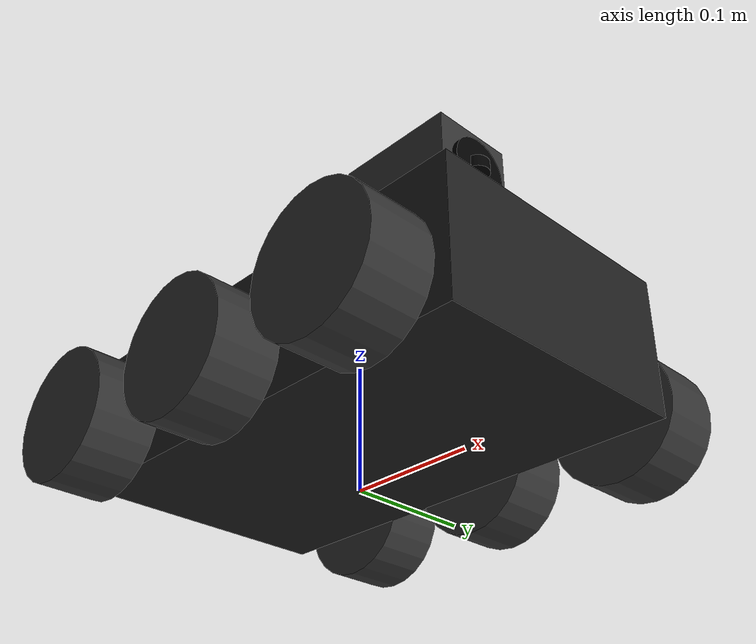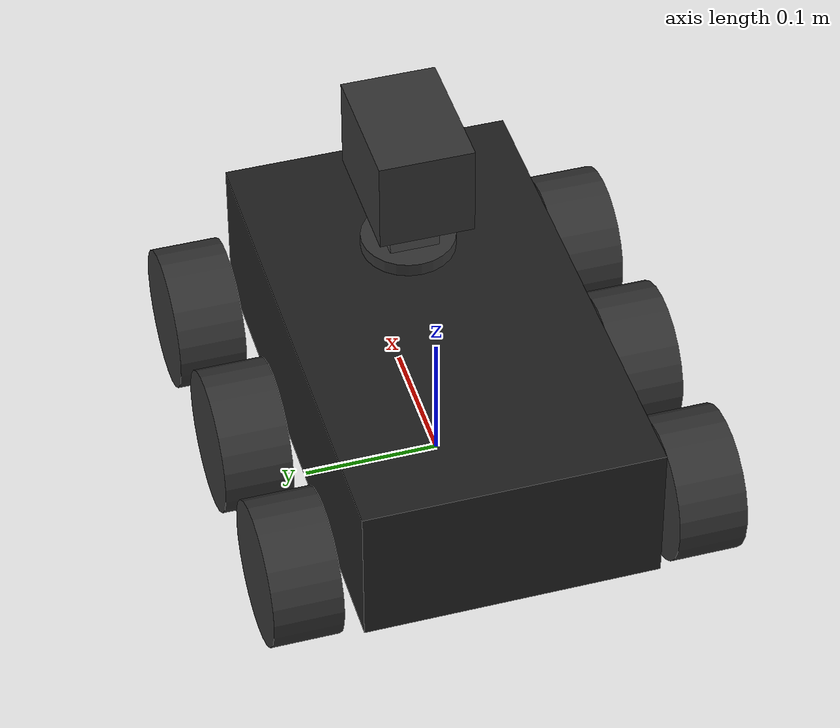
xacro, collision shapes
<?xml version="1.0"?>
<robot name="rgi" xmlns:xacro="http://www.ros.org/wiki/xacro">

  <!-- Included URDF/XACRO Files -->
  <xacro:include filename="$(find rgi_description)/urdf/materials.xacro" />
  <xacro:include filename="$(find rgi_description)/urdf/wheel.xacro" />
  <xacro:include filename="$(find rgi_description)/urdf/ptz.xacro" />

  <!-- PROPERTY LIST -->
  <!--All units in m-kg-s-radians unit system -->
  <property name="M_PI" value="3.1415926535897931" />

  <!-- Main Body-base -->
  <property name="base_x_size" value="0.378" />
  <property name="base_y_size" value="0.216" />
  <property name="base_z_size" value="0.11" />
  <property name="base_mass" value="3.0" /> <!-- in kg-->

  <!--Inertial macros for the box and cylinder. Units are kg*m^2-->
  <macro name="box_inertia" params="m x y z">
    <inertia  ixx="${m*(y*y+z*z)/12}" ixy = "0" ixz = "0"
              iyy="${m*(x*x+z*z)/12}" iyz = "0"
              izz="${m*(x*x+z*z)/12}" />
  </macro>

  <macro name="cylinder_inertia" params="m r h">
    <inertia  ixx="${m*(3*r*r+h*h)/12}" ixy = "0" ixz = "0"
              iyy="${m*(3*r*r+h*h)/12}" iyz = "0"
              izz="${m*r*r/2}" />
  </macro>

  <!-- BASE-FOOTPRINT -->
  <!-- base_footprint is a fictitious link(frame) that is on the ground right below base_link origin -->
  <link name="base_footprint">
    <inertial>
      <mass value="0.0001" />
      <origin xyz="0 0 0" />
      <inertia ixx="0.0001" ixy="0.0" ixz="0.0"
          iyy="0.0001" iyz="0.0"
          izz="0.0001" />
    </inertial>
    <visual>
        <origin xyz="0 0 0" rpy="0 0 0" />
        <geometry>
            <box size="0.001 0.001 0.001" />
        </geometry>
    </visual>
  </link>

  <gazebo reference="base_footprint">
    <turnGravityOff>false</turnGravityOff>
  </gazebo>

  <joint name="base_footprint_joint" type="fixed">
  <origin xyz="0 0 ${wheel_radius - base_z_origin_to_wheel_origin}" rpy="0 0 0" />
    <parent link="base_footprint"/>
    <child link="base_link" />
  </joint>

  <!-- BASE-LINK -->
  <!--Actual body/chassis of the robot-->
  <link name="base_link">
    <inertial>
      <mass value="${base_mass}" />
      <origin xyz="0 0 0" />
      <!--The 3x3 rotational inertia matrix. -->
      <box_inertia  m="${base_mass}" x="${base_x_size}" y="${base_y_size}" z="${base_z_size}"/>
    </inertial>
    <visual>
      <origin xyz="0 0 -0.047" rpy="0 0 0" />
      <geometry>
        <!--box size="${base_x_size} ${base_y_size} ${base_z_size}"/-->
				<mesh filename="package://rgi_description/meshes/base_link.stl"
				scale = "0.407	0.57 0.4579439252" />
      </geometry>
      <material name="Black" />
    </visual>
    <collision>
      <origin xyz="0 0 0" rpy="0 0 0 " />
      <geometry>
         <box size="${base_x_size} ${base_y_size} ${base_z_size}"/>
      </geometry>
    </collision>
  </link>
  <gazebo reference="base_link">
    <material>Gazebo/Black</material>
    <turnGravityOff>false</turnGravityOff>
  </gazebo>
 <!--Just 4 Display-->
  <link name="top_plate">
    <collision>

      <origin xyz="0 0 0" rpy="0 0 0"/>
      <geometry>
				<box size="0.001 0.001 0.001"/>
				<!--the collision boundary for parts are taken into account by collision boundary of the base_link-->
      </geometry>
    </collision>

    <visual>
      <origin xyz="0 0 -0.047" rpy="0 0 0"/>
			<geometry>
				<mesh filename="package://rgi_description/meshes/top_plate.stl"
				scale = "0.407	0.57 0.4579439252" />
      </geometry>
      <material name="black"/>
    </visual>

    <inertial>
      <origin xyz="0 0 0.1" rpy="0 0 0"/>
      <mass value="0.1"/>
      <inertia
				ixx="0.01" ixy="0.0" ixz="0.0"
				iyy="0.01" iyz="0.0"
				izz="0.01"/>
    </inertial>
  </link>
  <joint name="joint_top_plate" type="fixed">
    <parent link="base_link"/>
    <child link="top_plate"/>
    <origin xyz="0 0 0" rpy="0 0 0 " />
  </joint>
  <gazebo reference="top_plate">
    <material>Gazebo/Black</material>
    <turnGravityOff>false</turnGravityOff>
  </gazebo>
<!-- end Just 4 Display top_plate-->
  <!-- PTZb assembly -->
	<ptz parent= "base_link" x_offset="0.073" y_offset="0" z_offset="${base_z_size/2}" />

  <!-- WHEELs -->
  <wheel fb="front" lr="right" parent="base_link" translateX="1" translateY="-1" flipY="-1"/>
  <wheel fb="front" lr="left" parent="base_link" translateX="1" translateY="1" flipY="-1"/>
  <wheel fb="center" lr="right" parent="base_link" translateX="0" translateY="-1" flipY="-1"/>
  <wheel fb="center" lr="left" parent="base_link" translateX="0" translateY="1" flipY="-1"/>
  <wheel fb="back" lr="right" parent="base_link" translateX="-1" translateY="-1" flipY="-1"/>
  <wheel fb="back" lr="left" parent="base_link" translateX="-1" translateY="1" flipY="-1"/>

  <gazebo>
    <plugin name="skid_steer_drive_controller" filename="libgazebo_ros_skid_steer_drive.so">
      <alwaysOn>true</alwaysOn>
      <updateRate>100.0</updateRate>
      <leftFrontJoint>front_left_wheel_joint</leftFrontJoint>
      <rightFrontJoint>front_right_wheel_joint</rightFrontJoint>
      <leftRearJoint>back_left_wheel_joint</leftRearJoint>
      <rightRearJoint>back_right_wheel_joint</rightRearJoint>
      <wheelSeparation>${base_y_size}</wheelSeparation>
      <wheelDiameter>${2*wheel_radius}</wheelDiameter>
      <torque>35</torque>
      <broadcastTF>1</broadcastTF>
      <odometryFrame>map</odometryFrame>
      <commandTopic>cmd_vel</commandTopic>
      <odometryTopic>odom</odometryTopic>
      <robotBaseFrame>base_footprint</robotBaseFrame>
    </plugin>
    <plugin name="gazebo_ros_control" filename="libgazebo_ros_control.so" />
  </gazebo>

</robot>

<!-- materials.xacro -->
<robot>

  <material name="black">
    <color rgba="0.0 0.0 0.0 1.0"/>
  </material>

  <material name="blue">
    <color rgba="0.0 0.0 0.8 1.0"/>
  </material>

  <material name="green">
    <color rgba="0.0 0.8 0.0 1.0"/>
  </material>

  <material name="yellow">
    <color rgba="0.8 0.8 0 1"/>
  </material>

  <material name="grey">
    <color rgba="0.2 0.2 0.2 1.0"/>
  </material>

	<material name="DarkGray">
		<color rgba="0.3 0.3 0.3 1.0"/>
	</material>

  <material name="orange">
    <color rgba="${255/255} ${108/255} ${10/255} 1.0"/>
  </material>

  <material name="brown">
    <color rgba="${222/255} ${207/255} ${195/255} 1.0"/>
  </material>

  <material name="red">
    <color rgba="0.8 0.0 0.0 1.0"/>
  </material>

  <material name="white">
    <color rgba="1.0 1.0 1.0 1.0"/>
  </material>

</robot>

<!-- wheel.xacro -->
<robot name="wheel" xmlns:xacro="http://www.ros.org/wiki/xacro">

  <!-- Wheels -->
  <property name="wheel_radius" value="0.0525" />
  <property name="wheel_height" value="0.05" />
  <property name="wheel_mass" value="0.15" /> <!-- in kg-->

  <property name="base_x_origin_to_wheel_origin" value="0.1365" /> <!--length = BOX_l -wheel_radius -->
  <property name="base_y_origin_to_wheel_origin" value="0.1465" /> <!--Width = BOX_w + wheelGap + wheel_height/2-->
  <property name="base_z_origin_to_wheel_origin" value="-0.03" />

  <macro name="cylinder_inertia" params="m r h">
    <inertia  ixx="${m*(3*r*r+h*h)/12}" ixy = "0" ixz = "0"
              iyy="${m*(3*r*r+h*h)/12}" iyz = "0"
              izz="${m*r*r/2}" />
  </macro>

  <xacro:macro name="wheel" params="fb lr parent translateX translateY flipY"> <!--fb : front, back ; lr: left, right -->
    <link name="${fb}_${lr}_wheel">
      <visual>
        <origin xyz="0 0 0" rpy="${flipY*M_PI} 0 0" />
        <geometry>
          <!--cylinder length="${wheel_height}" radius="${wheel_radius}" /-->
         <mesh filename="package://rgi_description/meshes/wheel.stl"
				scale = " 0.3094233474 0.4374453193 0.3094233474 " />
        </geometry>
        <material name="grey"/>
      </visual>
      <collision>
        <origin xyz="0 0 0" rpy="${flipY*M_PI/2} 0 0" />
        <geometry>
          <cylinder length="${wheel_height}" radius="${wheel_radius}" />
        </geometry>
      </collision>
      <inertial>
        <mass value="${wheel_mass}" />
        <origin xyz="0 0 0" />
        <cylinder_inertia  m="${wheel_mass}" r="${wheel_radius}" h="${wheel_height}" />
      </inertial>
    </link>

    <gazebo reference="${fb}_${lr}_wheel">
      <mu1 value="1.0"/>
      <mu2 value="1.0"/>
      <kp  value="10000000.0" />
      <kd  value="1.0" />
      <fdir1 value="1 0 0"/>
      <material>Gazebo/Grey</material>
      <turnGravityOff>false</turnGravityOff>
    </gazebo>

    <joint name="${fb}_${lr}_wheel_joint" type="continuous">
      <parent link="${parent}"/>
      <child link="${fb}_${lr}_wheel"/>
      <origin xyz="${translateX * base_x_origin_to_wheel_origin} ${translateY * base_y_origin_to_wheel_origin} ${base_z_origin_to_wheel_origin}" rpy="0 0 0" />
      <axis xyz="0 1 0" rpy="0 0 0" />
      <limit effort="100" velocity="100"/>
      <joint_properties damping="0.0" friction="0.0"/>
    </joint>

    <!-- Transmission is important to link the joints and the controller -->
    <transmission name="${fb}_${lr}_wheel_joint_trans">
      <type>transmission_interface/SimpleTransmission</type>
      <joint name="${fb}_${lr}_wheel_joint" />
      <actuator name="${fb}_${lr}_wheel_joint_motor">
        <hardwareInterface>EffortJointInterface</hardwareInterface>
        <mechanicalReduction>1</mechanicalReduction>
      </actuator>
    </transmission>

  </xacro:macro>
</robot>

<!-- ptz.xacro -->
<robot name="ptz" xmlns:xacro="http://www.ros.org/wiki/xacro">

  <!-- "turret" -->
  <property name="turret_radius" value="0.035" />
  <property name="turret_height" value="0.010" />
  <property name="turret_mass" value="0.1" /> <!-- in kg-->
  <property name="turret_origin_x" value="0.073" /> <!--length -->
  <property name="turret_origin_y" value="0.0" /> <!--Width - in the center-->
  <property name="turret_origin_z" value="0.06" /> <!-- on Top -->
  <!-- Camera tilt link -->
  <property name="cam_tilt_x_size" value="0.035" />
  <property name="cam_tilt_y_size" value="0.037" />
  <property name="cam_tilt_z_size" value="0.03" />
	<property name="cam_tilt_mass" value="0.050" /> <!-- in kg-->
  <!-- Camera link -->
  <property name="camera_x_size" value="0.100" />
  <property name="camera_y_size" value="0.070" />
  <property name="camera_z_size" value="0.070" />
	<property name="camera_mass" value="0.450" /> <!-- in kg-->
	  <!-- Camera Lens -->
  <property name="lens_radius" value="0.025" />
  <property name="lens_height" value="0.005" />
	<property name="lens_mass" value="0.010" /> <!-- in kg-->

  <macro name="cylinder_inertia" params="m r h">
    <inertia  ixx="${m*(3*r*r+h*h)/12}" ixy = "0" ixz = "0"
              iyy="${m*(3*r*r+h*h)/12}" iyz = "0"
              izz="${m*r*r/2}" />
  </macro>

  <xacro:macro name="ptz" params="parent x_offset y_offset z_offset">
  <link name="turret_base">
    <collision>

      <origin xyz="0 0 0" rpy="0 0 0"/>
      <geometry>
				<cylinder length="${turret_height}" radius="${turret_radius}" />
      </geometry>
    </collision>

    <visual>
      <origin xyz="0 0 0" rpy="0 0 0"/>
			<geometry>
				<cylinder length="${turret_height}" radius="${turret_radius}" />
      </geometry>
      <material name="grey"/>

    </visual>

    <inertial>
      <origin xyz="0 0 0" rpy="0 0 0"/>
      <mass value="${turret_mass}" />
      <cylinder_inertia  m="${turret_mass}" r="${turret_radius}" h="${turret_height}" />
    </inertial>
  </link>
  <joint name="joint_turret_base" type="continuous">
    <parent link="${parent}"/>
    <child link="turret_base"/>

		<origin xyz="${x_offset} ${y_offset} ${turret_height/2 + z_offset}" rpy="0 0 0 " />
		<axis xyz="0 0 1" rpy="0 0 0" />
  </joint>
  <transmission name="ptz_base_joint_trans">
    <type>transmission_interface/SimpleTransmission</type>
    <joint name="joint_turret_base" />
    <actuator name="$ptz_base_joint_motor">
      <hardwareInterface>EffortJointInterface</hardwareInterface>
      <mechanicalReduction>1</mechanicalReduction>
    </actuator>
  </transmission>
  <gazebo reference="turret_base">
    <material>Gazebo/Grey</material>
    <turnGravityOff>false</turnGravityOff>
  </gazebo>
<!--end Display turret-->
  <link name="cam_tilt_link">
    <collision>

      <origin xyz="0 0 0" rpy="0 0 0"/>
      <geometry>
				<box size="${cam_tilt_x_size} ${cam_tilt_y_size} ${cam_tilt_z_size}" />
      </geometry>
    </collision>

    <visual>
      <origin xyz="0 0 0" rpy="0 0 0"/>
			<geometry>
				<box size="${cam_tilt_x_size} ${cam_tilt_y_size} ${cam_tilt_z_size}" />
      </geometry>
      <material name="DarkGray"/>
    </visual>

    <inertial>
      <origin xyz="0 0 0" rpy="0 0 0"/>
      <mass value="${ cam_tilt_mass}" />
      <box_inertia  m="${cam_tilt_mass}" x="${cam_tilt_x_size}" y="${cam_tilt_y_size}" z="${cam_tilt_z_size}" />
    </inertial>
  </link>
  <joint name="joint_cam_tilt_link" type="fixed">
    <parent link="turret_base"/>
    <child link="cam_tilt_link"/>
    <origin xyz="0 0 ${turret_height/2 + cam_tilt_z_size/2}" rpy="0 0 0 " />
  </joint>

  <gazebo reference="cam_tilt_link">
    <material>Gazebo/DarkGray</material>
    <turnGravityOff>false</turnGravityOff>
  </gazebo>
<!--end Display cam_tilt_link-->
  <link name="camera_link">
    <collision>
      <origin xyz="0 0 0" rpy="0 0 0"/>
      <geometry>
				<box size="${camera_x_size} ${camera_y_size} ${camera_z_size}" />
      </geometry>
    </collision>

    <visual>
      <origin xyz="0 0 0" rpy="0 0 0"/>
			<geometry>
				<box size="${camera_x_size} ${camera_y_size} ${camera_z_size}" />
      </geometry>
      <material name="grey"/>
    </visual>

    <inertial>
      <origin xyz="0 0 0" rpy="0 0 0"/>
      <mass value="${ camera_mass}" />
      <box_inertia  m="${camera_mass}" x="${camera_x_size}" y="${camera_y_size}" z="${camera_z_size}" />
    </inertial>
  </link>
  <joint name="joint_camera_link" type="continuous">
    <parent link="cam_tilt_link"/>
    <child link="camera_link"/>
    <origin xyz="0 0 ${cam_tilt_z_size/2 + camera_z_size/2 + 0.0075}" rpy="0 0 0 " />
		<axis xyz="0 1 0" rpy="0 0 0" />
  </joint>
  <transmission name="ptz_camera_tilt_trans">
    <type>transmission_interface/SimpleTransmission</type>
    <joint name="joint_camera_link" />
    <actuator name="$ptz_tilt_joint_motor">
      <hardwareInterface>EffortJointInterface</hardwareInterface>
      <mechanicalReduction>1</mechanicalReduction>
    </actuator>
  </transmission>
  <gazebo reference="camera_link">
    <material>Gazebo/Grey</material>
    <turnGravityOff>false</turnGravityOff>
  </gazebo>
<!--end Just camera_link-->
  <link name="lens_link">
    <collision>

      <origin xyz="0 0 0" rpy="0 0 0"/>
      <geometry>
				<cylinder length="${lens_height}" radius="${lens_radius}" />
      </geometry>
    </collision>

    <visual>
      <origin xyz="0 0 0" rpy="0 0 0"/>
			<geometry>
				<cylinder length="${lens_height}" radius="${lens_radius}" />
      </geometry>
      <material name="black"/>
    </visual>

    <inertial>
      <origin xyz="0 0 0" rpy="0 0 0"/>
      <mass value="${ camera_mass}" />
				<cylinder_inertia  m="${lens_mass}" r="${lens_radius}" h="${lens_height}" />
    </inertial>
  </link>
  <joint name="joint_lens_link" type="fixed">
    <parent link="camera_link"/>
    <child link="lens_link"/>
    <origin xyz="${camera_x_size/2 + lens_height/2} 0 0" rpy="0 ${M_PI/2} 0 " />

  </joint>

  <gazebo reference="lens_link">
    <material>Gazebo/Black</material>
    <turnGravityOff>false</turnGravityOff>
  </gazebo>
<!--end Display lens_link-->
  <link name="sensor_link">
    <collision>

      <origin xyz="0 0 0" rpy="0 0 0"/>
      <geometry>
				<cylinder length="0.01" radius="0.01" />
      </geometry>
    </collision>

    <visual>
      <origin xyz="0 0 0" rpy="0 0 0"/>
			<geometry>
				<cylinder length="0.01" radius="0.01" />
      </geometry>
      <material name="black"/>
    </visual>

    <inertial>
      <origin xyz="0 0 0" rpy="0 0 0"/>
      <mass value="0.001" />
				<cylinder_inertia  m="0.001" r="0.01" h="0.01" />
    </inertial>
  </link>
  <joint name="joint_sensor_link" type="fixed">
    <parent link="lens_link"/>
    <child link="sensor_link"/>
    <origin xyz="0 0 0" rpy="0 -${M_PI/2} 0 " />

  </joint>

  <gazebo reference="sensor_link">
    <material>Gazebo/Black</material>
    <turnGravityOff>false</turnGravityOff>
    <sensor type="camera" name="camera1">
      <update_rate>30.0</update_rate>
      <camera name="head">
        <horizontal_fov>1.3962634</horizontal_fov>
        <image>
          <width>800</width>
          <height>800</height>
          <format>R8G8B8</format>
        </image>
        <clip>
          <near>0.02</near>
          <far>300</far>
        </clip>
        <noise>
          <type>gaussian</type>
          <!-- Noise is sampled independently per pixel on each frame.
               That pixel's noise value is added to each of its color
               channels, which at that point lie in the range [0,1]. -->
          <mean>0.0</mean>
          <stddev>0.007</stddev>
        </noise>
      </camera>
      <plugin name="camera_controller" filename="libgazebo_ros_camera.so">
        <alwaysOn>true</alwaysOn>
        <updateRate>0.0</updateRate>
        <cameraName>rgi/camera</cameraName>
        <imageTopicName>image_raw</imageTopicName>
        <cameraInfoTopicName>camera_info</cameraInfoTopicName>
        <frameName>camera_link</frameName>
        <hackBaseline>0.07</hackBaseline>
        <distortionK1>0.0</distortionK1>
        <distortionK2>0.0</distortionK2>
        <distortionK3>0.0</distortionK3>
        <distortionT1>0.0</distortionT1>
        <distortionT2>0.0</distortionT2>
      </plugin>
    </sensor>
  </gazebo>
<!--end Display lens_link-->
  </xacro:macro>
</robot>
